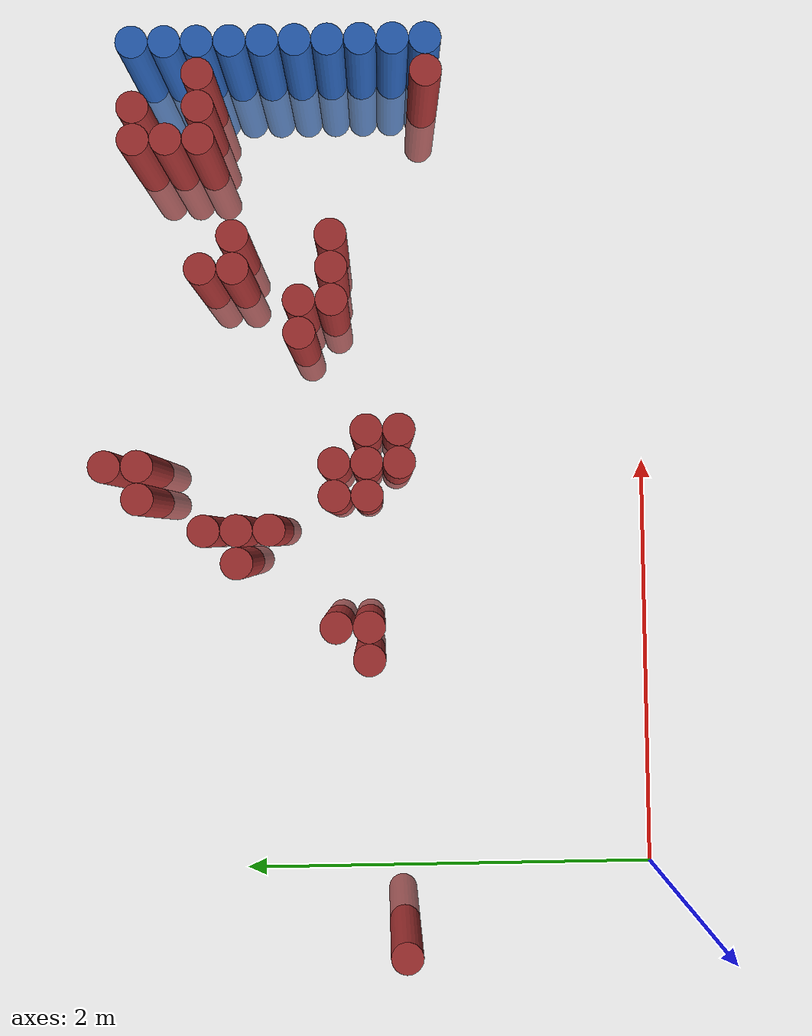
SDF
<sdf version="1.6">
 <world name="default">
  <model name="ground_plane">
   <static>1</static>
   <link name="link">
    <collision name="collision">
     <geometry><plane><normal>0 0 1</normal><size>100 100</size></plane></geometry>
     <surface><friction><ode><mu>100</mu><mu2>50</mu2></ode></friction></surface>
    </collision>
    <visual name="visual">
     <cast_shadows>0</cast_shadows>
     <geometry><plane><normal>0 0 1</normal><size>100 100</size></plane></geometry>
     <material>
      <script><uri>file://media/materials/scripts/gazebo.material</uri><name>Gazebo/Grey</name></script>
     </material>
    </visual>
   </link>
  </model>
  <model name="unit_cylinder_130">
   <static>1</static>
   <pose>3.925000 1.225000 0.000000 0.000000 0.000000 0.000000</pose>
   <link name="link">
    <inertial>
     <mass>1</mass>
     <inertia><ixx>0.145833</ixx><ixy>0</ixy><ixz>0</ixz><iyy>0.145833</iyy><iyz>0</iyz><izz>0.125</izz></inertia>
    </inertial>
    <collision name="collision">
     <geometry><cylinder><radius>0.075000</radius><length>1.5</length></cylinder></geometry>
    </collision>
    <visual name="visual">
     <geometry><cylinder><radius>0.075000</radius><length>1.5</length></cylinder></geometry>
     <material>
      <ambient>0.152000 0.379000 0.720000 1</ambient>
      <diffuse>0.152000 0.379000 0.720000 1</diffuse>
     </material>
     <material>
      <script><name>Gazebo/Grey</name><uri>file://media/materials/scripts/gazebo.material</uri></script>
     </material>
    </visual>
   </link>
  </model>
  <model name="unit_cylinder_132">
   <static>1</static>
   <pose>3.925000 1.375000 0.000000 0.000000 0.000000 0.000000</pose>
   <link name="link">
    <inertial>
     <mass>1</mass>
     <inertia><ixx>0.145833</ixx><ixy>0</ixy><ixz>0</ixz><iyy>0.145833</iyy><iyz>0</iyz><izz>0.125</izz></inertia>
    </inertial>
    <collision name="collision">
     <geometry><cylinder><radius>0.075000</radius><length>1.5</length></cylinder></geometry>
    </collision>
    <visual name="visual">
     <geometry><cylinder><radius>0.075000</radius><length>1.5</length></cylinder></geometry>
     <material>
      <ambient>0.152000 0.379000 0.720000 1</ambient>
      <diffuse>0.152000 0.379000 0.720000 1</diffuse>
     </material>
     <material>
      <script><name>Gazebo/Grey</name><uri>file://media/materials/scripts/gazebo.material</uri></script>
     </material>
    </visual>
   </link>
  </model>
  <model name="unit_cylinder_134">
   <static>1</static>
   <pose>3.925000 1.525000 0.000000 0.000000 0.000000 0.000000</pose>
   <link name="link">
    <inertial>
     <mass>1</mass>
     <inertia><ixx>0.145833</ixx><ixy>0</ixy><ixz>0</ixz><iyy>0.145833</iyy><iyz>0</iyz><izz>0.125</izz></inertia>
    </inertial>
    <collision name="collision">
     <geometry><cylinder><radius>0.075000</radius><length>1.5</length></cylinder></geometry>
    </collision>
    <visual name="visual">
     <geometry><cylinder><radius>0.075000</radius><length>1.5</length></cylinder></geometry>
     <material>
      <ambient>0.152000 0.379000 0.720000 1</ambient>
      <diffuse>0.152000 0.379000 0.720000 1</diffuse>
     </material>
     <material>
      <script><name>Gazebo/Grey</name><uri>file://media/materials/scripts/gazebo.material</uri></script>
     </material>
    </visual>
   </link>
  </model>
  <model name="unit_cylinder_136">
   <static>1</static>
   <pose>3.925000 1.675000 0.000000 0.000000 0.000000 0.000000</pose>
   <link name="link">
    <inertial>
     <mass>1</mass>
     <inertia><ixx>0.145833</ixx><ixy>0</ixy><ixz>0</ixz><iyy>0.145833</iyy><iyz>0</iyz><izz>0.125</izz></inertia>
    </inertial>
    <collision name="collision">
     <geometry><cylinder><radius>0.075000</radius><length>1.5</length></cylinder></geometry>
    </collision>
    <visual name="visual">
     <geometry><cylinder><radius>0.075000</radius><length>1.5</length></cylinder></geometry>
     <material>
      <ambient>0.152000 0.379000 0.720000 1</ambient>
      <diffuse>0.152000 0.379000 0.720000 1</diffuse>
     </material>
     <material>
      <script><name>Gazebo/Grey</name><uri>file://media/materials/scripts/gazebo.material</uri></script>
     </material>
    </visual>
   </link>
  </model>
  <model name="unit_cylinder_138">
   <static>1</static>
   <pose>3.925000 1.825000 0.000000 0.000000 0.000000 0.000000</pose>
   <link name="link">
    <inertial>
     <mass>1</mass>
     <inertia><ixx>0.145833</ixx><ixy>0</ixy><ixz>0</ixz><iyy>0.145833</iyy><iyz>0</iyz><izz>0.125</izz></inertia>
    </inertial>
    <collision name="collision">
     <geometry><cylinder><radius>0.075000</radius><length>1.5</length></cylinder></geometry>
    </collision>
    <visual name="visual">
     <geometry><cylinder><radius>0.075000</radius><length>1.5</length></cylinder></geometry>
     <material>
      <ambient>0.152000 0.379000 0.720000 1</ambient>
      <diffuse>0.152000 0.379000 0.720000 1</diffuse>
     </material>
     <material>
      <script><name>Gazebo/Grey</name><uri>file://media/materials/scripts/gazebo.material</uri></script>
     </material>
    </visual>
   </link>
  </model>
  <model name="unit_cylinder_140">
   <static>1</static>
   <pose>3.925000 1.975000 0.000000 0.000000 0.000000 0.000000</pose>
   <link name="link">
    <inertial>
     <mass>1</mass>
     <inertia><ixx>0.145833</ixx><ixy>0</ixy><ixz>0</ixz><iyy>0.145833</iyy><iyz>0</iyz><izz>0.125</izz></inertia>
    </inertial>
    <collision name="collision">
     <geometry><cylinder><radius>0.075000</radius><length>1.5</length></cylinder></geometry>
    </collision>
    <visual name="visual">
     <geometry><cylinder><radius>0.075000</radius><length>1.5</length></cylinder></geometry>
     <material>
      <ambient>0.152000 0.379000 0.720000 1</ambient>
      <diffuse>0.152000 0.379000 0.720000 1</diffuse>
     </material>
     <material>
      <script><name>Gazebo/Grey</name><uri>file://media/materials/scripts/gazebo.material</uri></script>
     </material>
    </visual>
   </link>
  </model>
  <model name="unit_cylinder_142">
   <static>1</static>
   <pose>3.925000 2.125000 0.000000 0.000000 0.000000 0.000000</pose>
   <link name="link">
    <inertial>
     <mass>1</mass>
     <inertia><ixx>0.145833</ixx><ixy>0</ixy><ixz>0</ixz><iyy>0.145833</iyy><iyz>0</iyz><izz>0.125</izz></inertia>
    </inertial>
    <collision name="collision">
     <geometry><cylinder><radius>0.075000</radius><length>1.5</length></cylinder></geometry>
    </collision>
    <visual name="visual">
     <geometry><cylinder><radius>0.075000</radius><length>1.5</length></cylinder></geometry>
     <material>
      <ambient>0.152000 0.379000 0.720000 1</ambient>
      <diffuse>0.152000 0.379000 0.720000 1</diffuse>
     </material>
     <material>
      <script><name>Gazebo/Grey</name><uri>file://media/materials/scripts/gazebo.material</uri></script>
     </material>
    </visual>
   </link>
  </model>
  <model name="unit_cylinder_144">
   <static>1</static>
   <pose>3.925000 2.275000 0.000000 0.000000 0.000000 0.000000</pose>
   <link name="link">
    <inertial>
     <mass>1</mass>
     <inertia><ixx>0.145833</ixx><ixy>0</ixy><ixz>0</ixz><iyy>0.145833</iyy><iyz>0</iyz><izz>0.125</izz></inertia>
    </inertial>
    <collision name="collision">
     <geometry><cylinder><radius>0.075000</radius><length>1.5</length></cylinder></geometry>
    </collision>
    <visual name="visual">
     <geometry><cylinder><radius>0.075000</radius><length>1.5</length></cylinder></geometry>
     <material>
      <ambient>0.152000 0.379000 0.720000 1</ambient>
      <diffuse>0.152000 0.379000 0.720000 1</diffuse>
     </material>
     <material>
      <script><name>Gazebo/Grey</name><uri>file://media/materials/scripts/gazebo.material</uri></script>
     </material>
    </visual>
   </link>
  </model>
  <model name="unit_cylinder_146">
   <static>1</static>
   <pose>3.925000 2.425000 0.000000 0.000000 0.000000 0.000000</pose>
   <link name="link">
    <inertial>
     <mass>1</mass>
     <inertia><ixx>0.145833</ixx><ixy>0</ixy><ixz>0</ixz><iyy>0.145833</iyy><iyz>0</iyz><izz>0.125</izz></inertia>
    </inertial>
    <collision name="collision">
     <geometry><cylinder><radius>0.075000</radius><length>1.5</length></cylinder></geometry>
    </collision>
    <visual name="visual">
     <geometry><cylinder><radius>0.075000</radius><length>1.5</length></cylinder></geometry>
     <material>
      <ambient>0.152000 0.379000 0.720000 1</ambient>
      <diffuse>0.152000 0.379000 0.720000 1</diffuse>
     </material>
     <material>
      <script><name>Gazebo/Grey</name><uri>file://media/materials/scripts/gazebo.material</uri></script>
     </material>
    </visual>
   </link>
  </model>
  <model name="unit_cylinder_332">
   <static>1</static>
   <pose>-0.275000 1.225000 0.000000 0.000000 0.000000 0.000000</pose>
   <link name="link">
    <inertial>
     <mass>1</mass>
     <inertia><ixx>0.145833</ixx><ixy>0</ixy><ixz>0</ixz><iyy>0.145833</iyy><iyz>0</iyz><izz>0.125</izz></inertia>
    </inertial>
    <collision name="collision">
     <geometry><cylinder><radius>0.075000</radius><length>1.5</length></cylinder></geometry>
    </collision>
    <visual name="visual">
     <geometry><cylinder><radius>0.075000</radius><length>1.5</length></cylinder></geometry>
     <material>
      <ambient>0.648000 0.192000 0.192000 1</ambient>
      <diffuse>0.648000 0.192000 0.192000 1</diffuse>
     </material>
     <material>
      <script><name>Gazebo/Grey</name><uri>file://media/materials/scripts/gazebo.material</uri></script>
     </material>
    </visual>
   </link>
  </model>
  <model name="unit_cylinder_344">
   <static>1</static>
   <pose>1.075000 1.375000 0.000000 0.000000 0.000000 0.000000</pose>
   <link name="link">
    <inertial>
     <mass>1</mass>
     <inertia><ixx>0.145833</ixx><ixy>0</ixy><ixz>0</ixz><iyy>0.145833</iyy><iyz>0</iyz><izz>0.125</izz></inertia>
    </inertial>
    <collision name="collision">
     <geometry><cylinder><radius>0.075000</radius><length>1.5</length></cylinder></geometry>
    </collision>
    <visual name="visual">
     <geometry><cylinder><radius>0.075000</radius><length>1.5</length></cylinder></geometry>
     <material>
      <ambient>0.648000 0.192000 0.192000 1</ambient>
      <diffuse>0.648000 0.192000 0.192000 1</diffuse>
     </material>
     <material>
      <script><name>Gazebo/Grey</name><uri>file://media/materials/scripts/gazebo.material</uri></script>
     </material>
    </visual>
   </link>
  </model>
  <model name="unit_cylinder_345">
   <static>1</static>
   <pose>1.225000 1.375000 0.000000 0.000000 0.000000 0.000000</pose>
   <link name="link">
    <inertial>
     <mass>1</mass>
     <inertia><ixx>0.145833</ixx><ixy>0</ixy><ixz>0</ixz><iyy>0.145833</iyy><iyz>0</iyz><izz>0.125</izz></inertia>
    </inertial>
    <collision name="collision">
     <geometry><cylinder><radius>0.075000</radius><length>1.5</length></cylinder></geometry>
    </collision>
    <visual name="visual">
     <geometry><cylinder><radius>0.075000</radius><length>1.5</length></cylinder></geometry>
     <material>
      <ambient>0.648000 0.192000 0.192000 1</ambient>
      <diffuse>0.648000 0.192000 0.192000 1</diffuse>
     </material>
     <material>
      <script><name>Gazebo/Grey</name><uri>file://media/materials/scripts/gazebo.material</uri></script>
     </material>
    </visual>
   </link>
  </model>
  <model name="unit_cylinder_346">
   <static>1</static>
   <pose>1.225000 1.525000 0.000000 0.000000 0.000000 0.000000</pose>
   <link name="link">
    <inertial>
     <mass>1</mass>
     <inertia><ixx>0.145833</ixx><ixy>0</ixy><ixz>0</ixz><iyy>0.145833</iyy><iyz>0</iyz><izz>0.125</izz></inertia>
    </inertial>
    <collision name="collision">
     <geometry><cylinder><radius>0.075000</radius><length>1.5</length></cylinder></geometry>
    </collision>
    <visual name="visual">
     <geometry><cylinder><radius>0.075000</radius><length>1.5</length></cylinder></geometry>
     <material>
      <ambient>0.648000 0.192000 0.192000 1</ambient>
      <diffuse>0.648000 0.192000 0.192000 1</diffuse>
     </material>
     <material>
      <script><name>Gazebo/Grey</name><uri>file://media/materials/scripts/gazebo.material</uri></script>
     </material>
    </visual>
   </link>
  </model>
  <model name="unit_cylinder_352">
   <static>1</static>
   <pose>1.525000 1.975000 0.000000 0.000000 0.000000 0.000000</pose>
   <link name="link">
    <inertial>
     <mass>1</mass>
     <inertia><ixx>0.145833</ixx><ixy>0</ixy><ixz>0</ixz><iyy>0.145833</iyy><iyz>0</iyz><izz>0.125</izz></inertia>
    </inertial>
    <collision name="collision">
     <geometry><cylinder><radius>0.075000</radius><length>1.5</length></cylinder></geometry>
    </collision>
    <visual name="visual">
     <geometry><cylinder><radius>0.075000</radius><length>1.5</length></cylinder></geometry>
     <material>
      <ambient>0.648000 0.192000 0.192000 1</ambient>
      <diffuse>0.648000 0.192000 0.192000 1</diffuse>
     </material>
     <material>
      <script><name>Gazebo/Grey</name><uri>file://media/materials/scripts/gazebo.material</uri></script>
     </material>
    </visual>
   </link>
  </model>
  <model name="unit_cylinder_357">
   <static>1</static>
   <pose>1.675000 1.825000 0.000000 0.000000 0.000000 0.000000</pose>
   <link name="link">
    <inertial>
     <mass>1</mass>
     <inertia><ixx>0.145833</ixx><ixy>0</ixy><ixz>0</ixz><iyy>0.145833</iyy><iyz>0</iyz><izz>0.125</izz></inertia>
    </inertial>
    <collision name="collision">
     <geometry><cylinder><radius>0.075000</radius><length>1.5</length></cylinder></geometry>
    </collision>
    <visual name="visual">
     <geometry><cylinder><radius>0.075000</radius><length>1.5</length></cylinder></geometry>
     <material>
      <ambient>0.648000 0.192000 0.192000 1</ambient>
      <diffuse>0.648000 0.192000 0.192000 1</diffuse>
     </material>
     <material>
      <script><name>Gazebo/Grey</name><uri>file://media/materials/scripts/gazebo.material</uri></script>
     </material>
    </visual>
   </link>
  </model>
  <model name="unit_cylinder_358">
   <static>1</static>
   <pose>1.675000 1.975000 0.000000 0.000000 0.000000 0.000000</pose>
   <link name="link">
    <inertial>
     <mass>1</mass>
     <inertia><ixx>0.145833</ixx><ixy>0</ixy><ixz>0</ixz><iyy>0.145833</iyy><iyz>0</iyz><izz>0.125</izz></inertia>
    </inertial>
    <collision name="collision">
     <geometry><cylinder><radius>0.075000</radius><length>1.5</length></cylinder></geometry>
    </collision>
    <visual name="visual">
     <geometry><cylinder><radius>0.075000</radius><length>1.5</length></cylinder></geometry>
     <material>
      <ambient>0.648000 0.192000 0.192000 1</ambient>
      <diffuse>0.648000 0.192000 0.192000 1</diffuse>
     </material>
     <material>
      <script><name>Gazebo/Grey</name><uri>file://media/materials/scripts/gazebo.material</uri></script>
     </material>
    </visual>
   </link>
  </model>
  <model name="unit_cylinder_359">
   <static>1</static>
   <pose>1.675000 2.125000 0.000000 0.000000 0.000000 0.000000</pose>
   <link name="link">
    <inertial>
     <mass>1</mass>
     <inertia><ixx>0.145833</ixx><ixy>0</ixy><ixz>0</ixz><iyy>0.145833</iyy><iyz>0</iyz><izz>0.125</izz></inertia>
    </inertial>
    <collision name="collision">
     <geometry><cylinder><radius>0.075000</radius><length>1.5</length></cylinder></geometry>
    </collision>
    <visual name="visual">
     <geometry><cylinder><radius>0.075000</radius><length>1.5</length></cylinder></geometry>
     <material>
      <ambient>0.648000 0.192000 0.192000 1</ambient>
      <diffuse>0.648000 0.192000 0.192000 1</diffuse>
     </material>
     <material>
      <script><name>Gazebo/Grey</name><uri>file://media/materials/scripts/gazebo.material</uri></script>
     </material>
    </visual>
   </link>
  </model>
  <model name="unit_cylinder_365">
   <static>1</static>
   <pose>1.825000 1.375000 0.000000 0.000000 0.000000 0.000000</pose>
   <link name="link">
    <inertial>
     <mass>1</mass>
     <inertia><ixx>0.145833</ixx><ixy>0</ixy><ixz>0</ixz><iyy>0.145833</iyy><iyz>0</iyz><izz>0.125</izz></inertia>
    </inertial>
    <collision name="collision">
     <geometry><cylinder><radius>0.075000</radius><length>1.5</length></cylinder></geometry>
    </collision>
    <visual name="visual">
     <geometry><cylinder><radius>0.075000</radius><length>1.5</length></cylinder></geometry>
     <material>
      <ambient>0.648000 0.192000 0.192000 1</ambient>
      <diffuse>0.648000 0.192000 0.192000 1</diffuse>
     </material>
     <material>
      <script><name>Gazebo/Grey</name><uri>file://media/materials/scripts/gazebo.material</uri></script>
     </material>
    </visual>
   </link>
  </model>
  <model name="unit_cylinder_366">
   <static>1</static>
   <pose>1.825000 1.525000 0.000000 0.000000 0.000000 0.000000</pose>
   <link name="link">
    <inertial>
     <mass>1</mass>
     <inertia><ixx>0.145833</ixx><ixy>0</ixy><ixz>0</ixz><iyy>0.145833</iyy><iyz>0</iyz><izz>0.125</izz></inertia>
    </inertial>
    <collision name="collision">
     <geometry><cylinder><radius>0.075000</radius><length>1.5</length></cylinder></geometry>
    </collision>
    <visual name="visual">
     <geometry><cylinder><radius>0.075000</radius><length>1.5</length></cylinder></geometry>
     <material>
      <ambient>0.648000 0.192000 0.192000 1</ambient>
      <diffuse>0.648000 0.192000 0.192000 1</diffuse>
     </material>
     <material>
      <script><name>Gazebo/Grey</name><uri>file://media/materials/scripts/gazebo.material</uri></script>
     </material>
    </visual>
   </link>
  </model>
  <model name="unit_cylinder_367">
   <static>1</static>
   <pose>1.825000 2.425000 0.000000 0.000000 0.000000 0.000000</pose>
   <link name="link">
    <inertial>
     <mass>1</mass>
     <inertia><ixx>0.145833</ixx><ixy>0</ixy><ixz>0</ixz><iyy>0.145833</iyy><iyz>0</iyz><izz>0.125</izz></inertia>
    </inertial>
    <collision name="collision">
     <geometry><cylinder><radius>0.075000</radius><length>1.5</length></cylinder></geometry>
    </collision>
    <visual name="visual">
     <geometry><cylinder><radius>0.075000</radius><length>1.5</length></cylinder></geometry>
     <material>
      <ambient>0.648000 0.192000 0.192000 1</ambient>
      <diffuse>0.648000 0.192000 0.192000 1</diffuse>
     </material>
     <material>
      <script><name>Gazebo/Grey</name><uri>file://media/materials/scripts/gazebo.material</uri></script>
     </material>
    </visual>
   </link>
  </model>
  <model name="unit_cylinder_374">
   <static>1</static>
   <pose>1.975000 1.225000 0.000000 0.000000 0.000000 0.000000</pose>
   <link name="link">
    <inertial>
     <mass>1</mass>
     <inertia><ixx>0.145833</ixx><ixy>0</ixy><ixz>0</ixz><iyy>0.145833</iyy><iyz>0</iyz><izz>0.125</izz></inertia>
    </inertial>
    <collision name="collision">
     <geometry><cylinder><radius>0.075000</radius><length>1.5</length></cylinder></geometry>
    </collision>
    <visual name="visual">
     <geometry><cylinder><radius>0.075000</radius><length>1.5</length></cylinder></geometry>
     <material>
      <ambient>0.648000 0.192000 0.192000 1</ambient>
      <diffuse>0.648000 0.192000 0.192000 1</diffuse>
     </material>
     <material>
      <script><name>Gazebo/Grey</name><uri>file://media/materials/scripts/gazebo.material</uri></script>
     </material>
    </visual>
   </link>
  </model>
  <model name="unit_cylinder_375">
   <static>1</static>
   <pose>1.975000 1.375000 0.000000 0.000000 0.000000 0.000000</pose>
   <link name="link">
    <inertial>
     <mass>1</mass>
     <inertia><ixx>0.145833</ixx><ixy>0</ixy><ixz>0</ixz><iyy>0.145833</iyy><iyz>0</iyz><izz>0.125</izz></inertia>
    </inertial>
    <collision name="collision">
     <geometry><cylinder><radius>0.075000</radius><length>1.5</length></cylinder></geometry>
    </collision>
    <visual name="visual">
     <geometry><cylinder><radius>0.075000</radius><length>1.5</length></cylinder></geometry>
     <material>
      <ambient>0.648000 0.192000 0.192000 1</ambient>
      <diffuse>0.648000 0.192000 0.192000 1</diffuse>
     </material>
     <material>
      <script><name>Gazebo/Grey</name><uri>file://media/materials/scripts/gazebo.material</uri></script>
     </material>
    </visual>
   </link>
  </model>
  <model name="unit_cylinder_376">
   <static>1</static>
   <pose>1.975000 1.525000 0.000000 0.000000 0.000000 0.000000</pose>
   <link name="link">
    <inertial>
     <mass>1</mass>
     <inertia><ixx>0.145833</ixx><ixy>0</ixy><ixz>0</ixz><iyy>0.145833</iyy><iyz>0</iyz><izz>0.125</izz></inertia>
    </inertial>
    <collision name="collision">
     <geometry><cylinder><radius>0.075000</radius><length>1.5</length></cylinder></geometry>
    </collision>
    <visual name="visual">
     <geometry><cylinder><radius>0.075000</radius><length>1.5</length></cylinder></geometry>
     <material>
      <ambient>0.648000 0.192000 0.192000 1</ambient>
      <diffuse>0.648000 0.192000 0.192000 1</diffuse>
     </material>
     <material>
      <script><name>Gazebo/Grey</name><uri>file://media/materials/scripts/gazebo.material</uri></script>
     </material>
    </visual>
   </link>
  </model>
  <model name="unit_cylinder_377">
   <static>1</static>
   <pose>1.975000 2.425000 0.000000 0.000000 0.000000 0.000000</pose>
   <link name="link">
    <inertial>
     <mass>1</mass>
     <inertia><ixx>0.145833</ixx><ixy>0</ixy><ixz>0</ixz><iyy>0.145833</iyy><iyz>0</iyz><izz>0.125</izz></inertia>
    </inertial>
    <collision name="collision">
     <geometry><cylinder><radius>0.075000</radius><length>1.5</length></cylinder></geometry>
    </collision>
    <visual name="visual">
     <geometry><cylinder><radius>0.075000</radius><length>1.5</length></cylinder></geometry>
     <material>
      <ambient>0.648000 0.192000 0.192000 1</ambient>
      <diffuse>0.648000 0.192000 0.192000 1</diffuse>
     </material>
     <material>
      <script><name>Gazebo/Grey</name><uri>file://media/materials/scripts/gazebo.material</uri></script>
     </material>
    </visual>
   </link>
  </model>
  <model name="unit_cylinder_378">
   <static>1</static>
   <pose>1.975000 2.575000 0.000000 0.000000 0.000000 0.000000</pose>
   <link name="link">
    <inertial>
     <mass>1</mass>
     <inertia><ixx>0.145833</ixx><ixy>0</ixy><ixz>0</ixz><iyy>0.145833</iyy><iyz>0</iyz><izz>0.125</izz></inertia>
    </inertial>
    <collision name="collision">
     <geometry><cylinder><radius>0.075000</radius><length>1.5</length></cylinder></geometry>
    </collision>
    <visual name="visual">
     <geometry><cylinder><radius>0.075000</radius><length>1.5</length></cylinder></geometry>
     <material>
      <ambient>0.648000 0.192000 0.192000 1</ambient>
      <diffuse>0.648000 0.192000 0.192000 1</diffuse>
     </material>
     <material>
      <script><name>Gazebo/Grey</name><uri>file://media/materials/scripts/gazebo.material</uri></script>
     </material>
    </visual>
   </link>
  </model>
  <model name="unit_cylinder_386">
   <static>1</static>
   <pose>2.125000 1.225000 0.000000 0.000000 0.000000 0.000000</pose>
   <link name="link">
    <inertial>
     <mass>1</mass>
     <inertia><ixx>0.145833</ixx><ixy>0</ixy><ixz>0</ixz><iyy>0.145833</iyy><iyz>0</iyz><izz>0.125</izz></inertia>
    </inertial>
    <collision name="collision">
     <geometry><cylinder><radius>0.075000</radius><length>1.5</length></cylinder></geometry>
    </collision>
    <visual name="visual">
     <geometry><cylinder><radius>0.075000</radius><length>1.5</length></cylinder></geometry>
     <material>
      <ambient>0.648000 0.192000 0.192000 1</ambient>
      <diffuse>0.648000 0.192000 0.192000 1</diffuse>
     </material>
     <material>
      <script><name>Gazebo/Grey</name><uri>file://media/materials/scripts/gazebo.material</uri></script>
     </material>
    </visual>
   </link>
  </model>
  <model name="unit_cylinder_387">
   <static>1</static>
   <pose>2.125000 1.375000 0.000000 0.000000 0.000000 0.000000</pose>
   <link name="link">
    <inertial>
     <mass>1</mass>
     <inertia><ixx>0.145833</ixx><ixy>0</ixy><ixz>0</ixz><iyy>0.145833</iyy><iyz>0</iyz><izz>0.125</izz></inertia>
    </inertial>
    <collision name="collision">
     <geometry><cylinder><radius>0.075000</radius><length>1.5</length></cylinder></geometry>
    </collision>
    <visual name="visual">
     <geometry><cylinder><radius>0.075000</radius><length>1.5</length></cylinder></geometry>
     <material>
      <ambient>0.648000 0.192000 0.192000 1</ambient>
      <diffuse>0.648000 0.192000 0.192000 1</diffuse>
     </material>
     <material>
      <script><name>Gazebo/Grey</name><uri>file://media/materials/scripts/gazebo.material</uri></script>
     </material>
    </visual>
   </link>
  </model>
  <model name="unit_cylinder_403">
   <static>1</static>
   <pose>2.575000 1.675000 0.000000 0.000000 0.000000 0.000000</pose>
   <link name="link">
    <inertial>
     <mass>1</mass>
     <inertia><ixx>0.145833</ixx><ixy>0</ixy><ixz>0</ixz><iyy>0.145833</iyy><iyz>0</iyz><izz>0.125</izz></inertia>
    </inertial>
    <collision name="collision">
     <geometry><cylinder><radius>0.075000</radius><length>1.5</length></cylinder></geometry>
    </collision>
    <visual name="visual">
     <geometry><cylinder><radius>0.075000</radius><length>1.5</length></cylinder></geometry>
     <material>
      <ambient>0.648000 0.192000 0.192000 1</ambient>
      <diffuse>0.648000 0.192000 0.192000 1</diffuse>
     </material>
     <material>
      <script><name>Gazebo/Grey</name><uri>file://media/materials/scripts/gazebo.material</uri></script>
     </material>
    </visual>
   </link>
  </model>
  <model name="unit_cylinder_409">
   <static>1</static>
   <pose>2.725000 1.525000 0.000000 0.000000 0.000000 0.000000</pose>
   <link name="link">
    <inertial>
     <mass>1</mass>
     <inertia><ixx>0.145833</ixx><ixy>0</ixy><ixz>0</ixz><iyy>0.145833</iyy><iyz>0</iyz><izz>0.125</izz></inertia>
    </inertial>
    <collision name="collision">
     <geometry><cylinder><radius>0.075000</radius><length>1.5</length></cylinder></geometry>
    </collision>
    <visual name="visual">
     <geometry><cylinder><radius>0.075000</radius><length>1.5</length></cylinder></geometry>
     <material>
      <ambient>0.648000 0.192000 0.192000 1</ambient>
      <diffuse>0.648000 0.192000 0.192000 1</diffuse>
     </material>
     <material>
      <script><name>Gazebo/Grey</name><uri>file://media/materials/scripts/gazebo.material</uri></script>
     </material>
    </visual>
   </link>
  </model>
  <model name="unit_cylinder_410">
   <static>1</static>
   <pose>2.725000 1.675000 0.000000 0.000000 0.000000 0.000000</pose>
   <link name="link">
    <inertial>
     <mass>1</mass>
     <inertia><ixx>0.145833</ixx><ixy>0</ixy><ixz>0</ixz><iyy>0.145833</iyy><iyz>0</iyz><izz>0.125</izz></inertia>
    </inertial>
    <collision name="collision">
     <geometry><cylinder><radius>0.075000</radius><length>1.5</length></cylinder></geometry>
    </collision>
    <visual name="visual">
     <geometry><cylinder><radius>0.075000</radius><length>1.5</length></cylinder></geometry>
     <material>
      <ambient>0.648000 0.192000 0.192000 1</ambient>
      <diffuse>0.648000 0.192000 0.192000 1</diffuse>
     </material>
     <material>
      <script><name>Gazebo/Grey</name><uri>file://media/materials/scripts/gazebo.material</uri></script>
     </material>
    </visual>
   </link>
  </model>
  <model name="unit_cylinder_416">
   <static>1</static>
   <pose>2.875000 1.525000 0.000000 0.000000 0.000000 0.000000</pose>
   <link name="link">
    <inertial>
     <mass>1</mass>
     <inertia><ixx>0.145833</ixx><ixy>0</ixy><ixz>0</ixz><iyy>0.145833</iyy><iyz>0</iyz><izz>0.125</izz></inertia>
    </inertial>
    <collision name="collision">
     <geometry><cylinder><radius>0.075000</radius><length>1.5</length></cylinder></geometry>
    </collision>
    <visual name="visual">
     <geometry><cylinder><radius>0.075000</radius><length>1.5</length></cylinder></geometry>
     <material>
      <ambient>0.648000 0.192000 0.192000 1</ambient>
      <diffuse>0.648000 0.192000 0.192000 1</diffuse>
     </material>
     <material>
      <script><name>Gazebo/Grey</name><uri>file://media/materials/scripts/gazebo.material</uri></script>
     </material>
    </visual>
   </link>
  </model>
  <model name="unit_cylinder_417">
   <static>1</static>
   <pose>2.875000 1.975000 0.000000 0.000000 0.000000 0.000000</pose>
   <link name="link">
    <inertial>
     <mass>1</mass>
     <inertia><ixx>0.145833</ixx><ixy>0</ixy><ixz>0</ixz><iyy>0.145833</iyy><iyz>0</iyz><izz>0.125</izz></inertia>
    </inertial>
    <collision name="collision">
     <geometry><cylinder><radius>0.075000</radius><length>1.5</length></cylinder></geometry>
    </collision>
    <visual name="visual">
     <geometry><cylinder><radius>0.075000</radius><length>1.5</length></cylinder></geometry>
     <material>
      <ambient>0.648000 0.192000 0.192000 1</ambient>
      <diffuse>0.648000 0.192000 0.192000 1</diffuse>
     </material>
     <material>
      <script><name>Gazebo/Grey</name><uri>file://media/materials/scripts/gazebo.material</uri></script>
     </material>
    </visual>
   </link>
  </model>
  <model name="unit_cylinder_418">
   <static>1</static>
   <pose>2.875000 2.125000 0.000000 0.000000 0.000000 0.000000</pose>
   <link name="link">
    <inertial>
     <mass>1</mass>
     <inertia><ixx>0.145833</ixx><ixy>0</ixy><ixz>0</ixz><iyy>0.145833</iyy><iyz>0</iyz><izz>0.125</izz></inertia>
    </inertial>
    <collision name="collision">
     <geometry><cylinder><radius>0.075000</radius><length>1.5</length></cylinder></geometry>
    </collision>
    <visual name="visual">
     <geometry><cylinder><radius>0.075000</radius><length>1.5</length></cylinder></geometry>
     <material>
      <ambient>0.648000 0.192000 0.192000 1</ambient>
      <diffuse>0.648000 0.192000 0.192000 1</diffuse>
     </material>
     <material>
      <script><name>Gazebo/Grey</name><uri>file://media/materials/scripts/gazebo.material</uri></script>
     </material>
    </visual>
   </link>
  </model>
  <model name="unit_cylinder_424">
   <static>1</static>
   <pose>3.025000 1.525000 0.000000 0.000000 0.000000 0.000000</pose>
   <link name="link">
    <inertial>
     <mass>1</mass>
     <inertia><ixx>0.145833</ixx><ixy>0</ixy><ixz>0</ixz><iyy>0.145833</iyy><iyz>0</iyz><izz>0.125</izz></inertia>
    </inertial>
    <collision name="collision">
     <geometry><cylinder><radius>0.075000</radius><length>1.5</length></cylinder></geometry>
    </collision>
    <visual name="visual">
     <geometry><cylinder><radius>0.075000</radius><length>1.5</length></cylinder></geometry>
     <material>
      <ambient>0.648000 0.192000 0.192000 1</ambient>
      <diffuse>0.648000 0.192000 0.192000 1</diffuse>
     </material>
     <material>
      <script><name>Gazebo/Grey</name><uri>file://media/materials/scripts/gazebo.material</uri></script>
     </material>
    </visual>
   </link>
  </model>
  <model name="unit_cylinder_425">
   <static>1</static>
   <pose>3.025000 1.975000 0.000000 0.000000 0.000000 0.000000</pose>
   <link name="link">
    <inertial>
     <mass>1</mass>
     <inertia><ixx>0.145833</ixx><ixy>0</ixy><ixz>0</ixz><iyy>0.145833</iyy><iyz>0</iyz><izz>0.125</izz></inertia>
    </inertial>
    <collision name="collision">
     <geometry><cylinder><radius>0.075000</radius><length>1.5</length></cylinder></geometry>
    </collision>
    <visual name="visual">
     <geometry><cylinder><radius>0.075000</radius><length>1.5</length></cylinder></geometry>
     <material>
      <ambient>0.648000 0.192000 0.192000 1</ambient>
      <diffuse>0.648000 0.192000 0.192000 1</diffuse>
     </material>
     <material>
      <script><name>Gazebo/Grey</name><uri>file://media/materials/scripts/gazebo.material</uri></script>
     </material>
    </visual>
   </link>
  </model>
  <model name="unit_cylinder_434">
   <static>1</static>
   <pose>3.475000 2.125000 0.000000 0.000000 0.000000 0.000000</pose>
   <link name="link">
    <inertial>
     <mass>1</mass>
     <inertia><ixx>0.145833</ixx><ixy>0</ixy><ixz>0</ixz><iyy>0.145833</iyy><iyz>0</iyz><izz>0.125</izz></inertia>
    </inertial>
    <collision name="collision">
     <geometry><cylinder><radius>0.075000</radius><length>1.5</length></cylinder></geometry>
    </collision>
    <visual name="visual">
     <geometry><cylinder><radius>0.075000</radius><length>1.5</length></cylinder></geometry>
     <material>
      <ambient>0.648000 0.192000 0.192000 1</ambient>
      <diffuse>0.648000 0.192000 0.192000 1</diffuse>
     </material>
     <material>
      <script><name>Gazebo/Grey</name><uri>file://media/materials/scripts/gazebo.material</uri></script>
     </material>
    </visual>
   </link>
  </model>
  <model name="unit_cylinder_435">
   <static>1</static>
   <pose>3.475000 2.275000 0.000000 0.000000 0.000000 0.000000</pose>
   <link name="link">
    <inertial>
     <mass>1</mass>
     <inertia><ixx>0.145833</ixx><ixy>0</ixy><ixz>0</ixz><iyy>0.145833</iyy><iyz>0</iyz><izz>0.125</izz></inertia>
    </inertial>
    <collision name="collision">
     <geometry><cylinder><radius>0.075000</radius><length>1.5</length></cylinder></geometry>
    </collision>
    <visual name="visual">
     <geometry><cylinder><radius>0.075000</radius><length>1.5</length></cylinder></geometry>
     <material>
      <ambient>0.648000 0.192000 0.192000 1</ambient>
      <diffuse>0.648000 0.192000 0.192000 1</diffuse>
     </material>
     <material>
      <script><name>Gazebo/Grey</name><uri>file://media/materials/scripts/gazebo.material</uri></script>
     </material>
    </visual>
   </link>
  </model>
  <model name="unit_cylinder_436">
   <static>1</static>
   <pose>3.475000 2.425000 0.000000 0.000000 0.000000 0.000000</pose>
   <link name="link">
    <inertial>
     <mass>1</mass>
     <inertia><ixx>0.145833</ixx><ixy>0</ixy><ixz>0</ixz><iyy>0.145833</iyy><iyz>0</iyz><izz>0.125</izz></inertia>
    </inertial>
    <collision name="collision">
     <geometry><cylinder><radius>0.075000</radius><length>1.5</length></cylinder></geometry>
    </collision>
    <visual name="visual">
     <geometry><cylinder><radius>0.075000</radius><length>1.5</length></cylinder></geometry>
     <material>
      <ambient>0.648000 0.192000 0.192000 1</ambient>
      <diffuse>0.648000 0.192000 0.192000 1</diffuse>
     </material>
     <material>
      <script><name>Gazebo/Grey</name><uri>file://media/materials/scripts/gazebo.material</uri></script>
     </material>
    </visual>
   </link>
  </model>
  <model name="unit_cylinder_440">
   <static>1</static>
   <pose>3.625000 2.125000 0.000000 0.000000 0.000000 0.000000</pose>
   <link name="link">
    <inertial>
     <mass>1</mass>
     <inertia><ixx>0.145833</ixx><ixy>0</ixy><ixz>0</ixz><iyy>0.145833</iyy><iyz>0</iyz><izz>0.125</izz></inertia>
    </inertial>
    <collision name="collision">
     <geometry><cylinder><radius>0.075000</radius><length>1.5</length></cylinder></geometry>
    </collision>
    <visual name="visual">
     <geometry><cylinder><radius>0.075000</radius><length>1.5</length></cylinder></geometry>
     <material>
      <ambient>0.648000 0.192000 0.192000 1</ambient>
      <diffuse>0.648000 0.192000 0.192000 1</diffuse>
     </material>
     <material>
      <script><name>Gazebo/Grey</name><uri>file://media/materials/scripts/gazebo.material</uri></script>
     </material>
    </visual>
   </link>
  </model>
  <model name="unit_cylinder_441">
   <static>1</static>
   <pose>3.625000 2.425000 0.000000 0.000000 0.000000 0.000000</pose>
   <link name="link">
    <inertial>
     <mass>1</mass>
     <inertia><ixx>0.145833</ixx><ixy>0</ixy><ixz>0</ixz><iyy>0.145833</iyy><iyz>0</iyz><izz>0.125</izz></inertia>
    </inertial>
    <collision name="collision">
     <geometry><cylinder><radius>0.075000</radius><length>1.5</length></cylinder></geometry>
    </collision>
    <visual name="visual">
     <geometry><cylinder><radius>0.075000</radius><length>1.5</length></cylinder></geometry>
     <material>
      <ambient>0.648000 0.192000 0.192000 1</ambient>
      <diffuse>0.648000 0.192000 0.192000 1</diffuse>
     </material>
     <material>
      <script><name>Gazebo/Grey</name><uri>file://media/materials/scripts/gazebo.material</uri></script>
     </material>
    </visual>
   </link>
  </model>
  <model name="unit_cylinder_457">
   <static>1</static>
   <pose>3.775000 1.075000 0.000000 0.000000 0.000000 0.000000</pose>
   <link name="link">
    <inertial>
     <mass>1</mass>
     <inertia><ixx>0.145833</ixx><ixy>0</ixy><ixz>0</ixz><iyy>0.145833</iyy><iyz>0</iyz><izz>0.125</izz></inertia>
    </inertial>
    <collision name="collision">
     <geometry><cylinder><radius>0.075000</radius><length>1.5</length></cylinder></geometry>
    </collision>
    <visual name="visual">
     <geometry><cylinder><radius>0.075000</radius><length>1.5</length></cylinder></geometry>
     <material>
      <ambient>0.648000 0.192000 0.192000 1</ambient>
      <diffuse>0.648000 0.192000 0.192000 1</diffuse>
     </material>
     <material>
      <script><name>Gazebo/Grey</name><uri>file://media/materials/scripts/gazebo.material</uri></script>
     </material>
    </visual>
   </link>
  </model>
  <model name="unit_cylinder_458">
   <static>1</static>
   <pose>3.775000 2.125000 0.000000 0.000000 0.000000 0.000000</pose>
   <link name="link">
    <inertial>
     <mass>1</mass>
     <inertia><ixx>0.145833</ixx><ixy>0</ixy><ixz>0</ixz><iyy>0.145833</iyy><iyz>0</iyz><izz>0.125</izz></inertia>
    </inertial>
    <collision name="collision">
     <geometry><cylinder><radius>0.075000</radius><length>1.5</length></cylinder></geometry>
    </collision>
    <visual name="visual">
     <geometry><cylinder><radius>0.075000</radius><length>1.5</length></cylinder></geometry>
     <material>
      <ambient>0.648000 0.192000 0.192000 1</ambient>
      <diffuse>0.648000 0.192000 0.192000 1</diffuse>
     </material>
     <material>
      <script><name>Gazebo/Grey</name><uri>file://media/materials/scripts/gazebo.material</uri></script>
     </material>
    </visual>
   </link>
  </model>
  <model name="unit_cylinder_493">
   <static>1</static>
   <pose>3.925000 1.075000 0.000000 0.000000 0.000000 0.000000</pose>
   <link name="link">
    <inertial>
     <mass>1</mass>
     <inertia><ixx>0.145833</ixx><ixy>0</ixy><ixz>0</ixz><iyy>0.145833</iyy><iyz>0</iyz><izz>0.125</izz></inertia>
    </inertial>
    <collision name="collision">
     <geometry><cylinder><radius>0.075000</radius><length>1.5</length></cylinder></geometry>
    </collision>
    <visual name="visual">
     <geometry><cylinder><radius>0.075000</radius><length>1.5</length></cylinder></geometry>
     <material>
      <ambient>0.152000 0.379000 0.720000 1</ambient>
      <diffuse>0.152000 0.379000 0.720000 1</diffuse>
     </material>
     <material>
      <script><name>Gazebo/Grey</name><uri>file://media/materials/scripts/gazebo.material</uri></script>
     </material>
    </visual>
   </link>
  </model>
  <model name="unit_cylinder_494">
   <static>1</static>
   <pose>3.925000 1.225000 0.000000 0.000000 0.000000 0.000000</pose>
   <link name="link">
    <inertial>
     <mass>1</mass>
     <inertia><ixx>0.145833</ixx><ixy>0</ixy><ixz>0</ixz><iyy>0.145833</iyy><iyz>0</iyz><izz>0.125</izz></inertia>
    </inertial>
    <collision name="collision">
     <geometry><cylinder><radius>0.075000</radius><length>1.5</length></cylinder></geometry>
    </collision>
    <visual name="visual">
     <geometry><cylinder><radius>0.075000</radius><length>1.5</length></cylinder></geometry>
     <material>
      <ambient>0.152000 0.379000 0.720000 1</ambient>
      <diffuse>0.152000 0.379000 0.720000 1</diffuse>
     </material>
     <material>
      <script><name>Gazebo/Grey</name><uri>file://media/materials/scripts/gazebo.material</uri></script>
     </material>
    </visual>
   </link>
  </model>
  <model name="unit_cylinder_495">
   <static>1</static>
   <pose>3.925000 1.375000 0.000000 0.000000 0.000000 0.000000</pose>
   <link name="link">
    <inertial>
     <mass>1</mass>
     <inertia><ixx>0.145833</ixx><ixy>0</ixy><ixz>0</ixz><iyy>0.145833</iyy><iyz>0</iyz><izz>0.125</izz></inertia>
    </inertial>
    <collision name="collision">
     <geometry><cylinder><radius>0.075000</radius><length>1.5</length></cylinder></geometry>
    </collision>
    <visual name="visual">
     <geometry><cylinder><radius>0.075000</radius><length>1.5</length></cylinder></geometry>
     <material>
      <ambient>0.152000 0.379000 0.720000 1</ambient>
      <diffuse>0.152000 0.379000 0.720000 1</diffuse>
     </material>
     <material>
      <script><name>Gazebo/Grey</name><uri>file://media/materials/scripts/gazebo.material</uri></script>
     </material>
    </visual>
   </link>
  </model>
  <model name="unit_cylinder_496">
   <static>1</static>
   <pose>3.925000 1.525000 0.000000 0.000000 0.000000 0.000000</pose>
   <link name="link">
    <inertial>
     <mass>1</mass>
     <inertia><ixx>0.145833</ixx><ixy>0</ixy><ixz>0</ixz><iyy>0.145833</iyy><iyz>0</iyz><izz>0.125</izz></inertia>
    </inertial>
    <collision name="collision">
     <geometry><cylinder><radius>0.075000</radius><length>1.5</length></cylinder></geometry>
    </collision>
    <visual name="visual">
     <geometry><cylinder><radius>0.075000</radius><length>1.5</length></cylinder></geometry>
     <material>
      <ambient>0.152000 0.379000 0.720000 1</ambient>
      <diffuse>0.152000 0.379000 0.720000 1</diffuse>
     </material>
     <material>
      <script><name>Gazebo/Grey</name><uri>file://media/materials/scripts/gazebo.material</uri></script>
     </material>
    </visual>
   </link>
  </model>
  <model name="unit_cylinder_497">
   <static>1</static>
   <pose>3.925000 1.675000 0.000000 0.000000 0.000000 0.000000</pose>
   <link name="link">
    <inertial>
     <mass>1</mass>
     <inertia><ixx>0.145833</ixx><ixy>0</ixy><ixz>0</ixz><iyy>0.145833</iyy><iyz>0</iyz><izz>0.125</izz></inertia>
    </inertial>
    <collision name="collision">
     <geometry><cylinder><radius>0.075000</radius><length>1.5</length></cylinder></geometry>
    </collision>
    <visual name="visual">
     <geometry><cylinder><radius>0.075000</radius><length>1.5</length></cylinder></geometry>
     <material>
      <ambient>0.152000 0.379000 0.720000 1</ambient>
      <diffuse>0.152000 0.379000 0.720000 1</diffuse>
     </material>
     <material>
      <script><name>Gazebo/Grey</name><uri>file://media/materials/scripts/gazebo.material</uri></script>
     </material>
    </visual>
   </link>
  </model>
  <model name="unit_cylinder_498">
   <static>1</static>
   <pose>3.925000 1.825000 0.000000 0.000000 0.000000 0.000000</pose>
   <link name="link">
    <inertial>
     <mass>1</mass>
     <inertia><ixx>0.145833</ixx><ixy>0</ixy><ixz>0</ixz><iyy>0.145833</iyy><iyz>0</iyz><izz>0.125</izz></inertia>
    </inertial>
    <collision name="collision">
     <geometry><cylinder><radius>0.075000</radius><length>1.5</length></cylinder></geometry>
    </collision>
    <visual name="visual">
     <geometry><cylinder><radius>0.075000</radius><length>1.5</length></cylinder></geometry>
     <material>
      <ambient>0.152000 0.379000 0.720000 1</ambient>
      <diffuse>0.152000 0.379000 0.720000 1</diffuse>
     </material>
     <material>
      <script><name>Gazebo/Grey</name><uri>file://media/materials/scripts/gazebo.material</uri></script>
     </material>
    </visual>
   </link>
  </model>
  <model name="unit_cylinder_499">
   <static>1</static>
   <pose>3.925000 1.975000 0.000000 0.000000 0.000000 0.000000</pose>
   <link name="link">
    <inertial>
     <mass>1</mass>
     <inertia><ixx>0.145833</ixx><ixy>0</ixy><ixz>0</ixz><iyy>0.145833</iyy><iyz>0</iyz><izz>0.125</izz></inertia>
    </inertial>
    <collision name="collision">
     <geometry><cylinder><radius>0.075000</radius><length>1.5</length></cylinder></geometry>
    </collision>
    <visual name="visual">
     <geometry><cylinder><radius>0.075000</radius><length>1.5</length></cylinder></geometry>
     <material>
      <ambient>0.152000 0.379000 0.720000 1</ambient>
      <diffuse>0.152000 0.379000 0.720000 1</diffuse>
     </material>
     <material>
      <script><name>Gazebo/Grey</name><uri>file://media/materials/scripts/gazebo.material</uri></script>
     </material>
    </visual>
   </link>
  </model>
  <model name="unit_cylinder_500">
   <static>1</static>
   <pose>3.925000 2.125000 0.000000 0.000000 0.000000 0.000000</pose>
   <link name="link">
    <inertial>
     <mass>1</mass>
     <inertia><ixx>0.145833</ixx><ixy>0</ixy><ixz>0</ixz><iyy>0.145833</iyy><iyz>0</iyz><izz>0.125</izz></inertia>
    </inertial>
    <collision name="collision">
     <geometry><cylinder><radius>0.075000</radius><length>1.5</length></cylinder></geometry>
    </collision>
    <visual name="visual">
     <geometry><cylinder><radius>0.075000</radius><length>1.5</length></cylinder></geometry>
     <material>
      <ambient>0.152000 0.379000 0.720000 1</ambient>
      <diffuse>0.152000 0.379000 0.720000 1</diffuse>
     </material>
     <material>
      <script><name>Gazebo/Grey</name><uri>file://media/materials/scripts/gazebo.material</uri></script>
     </material>
    </visual>
   </link>
  </model>
  <model name="unit_cylinder_501">
   <static>1</static>
   <pose>3.925000 2.275000 0.000000 0.000000 0.000000 0.000000</pose>
   <link name="link">
    <inertial>
     <mass>1</mass>
     <inertia><ixx>0.145833</ixx><ixy>0</ixy><ixz>0</ixz><iyy>0.145833</iyy><iyz>0</iyz><izz>0.125</izz></inertia>
    </inertial>
    <collision name="collision">
     <geometry><cylinder><radius>0.075000</radius><length>1.5</length></cylinder></geometry>
    </collision>
    <visual name="visual">
     <geometry><cylinder><radius>0.075000</radius><length>1.5</length></cylinder></geometry>
     <material>
      <ambient>0.152000 0.379000 0.720000 1</ambient>
      <diffuse>0.152000 0.379000 0.720000 1</diffuse>
     </material>
     <material>
      <script><name>Gazebo/Grey</name><uri>file://media/materials/scripts/gazebo.material</uri></script>
     </material>
    </visual>
   </link>
  </model>
  <model name="unit_cylinder_502">
   <static>1</static>
   <pose>3.925000 2.425000 0.000000 0.000000 0.000000 0.000000</pose>
   <link name="link">
    <inertial>
     <mass>1</mass>
     <inertia><ixx>0.145833</ixx><ixy>0</ixy><ixz>0</ixz><iyy>0.145833</iyy><iyz>0</iyz><izz>0.125</izz></inertia>
    </inertial>
    <collision name="collision">
     <geometry><cylinder><radius>0.075000</radius><length>1.5</length></cylinder></geometry>
    </collision>
    <visual name="visual">
     <geometry><cylinder><radius>0.075000</radius><length>1.5</length></cylinder></geometry>
     <material>
      <ambient>0.152000 0.379000 0.720000 1</ambient>
      <diffuse>0.152000 0.379000 0.720000 1</diffuse>
     </material>
     <material>
      <script><name>Gazebo/Grey</name><uri>file://media/materials/scripts/gazebo.material</uri></script>
     </material>
    </visual>
   </link>
  </model>
 </world>
</sdf>
